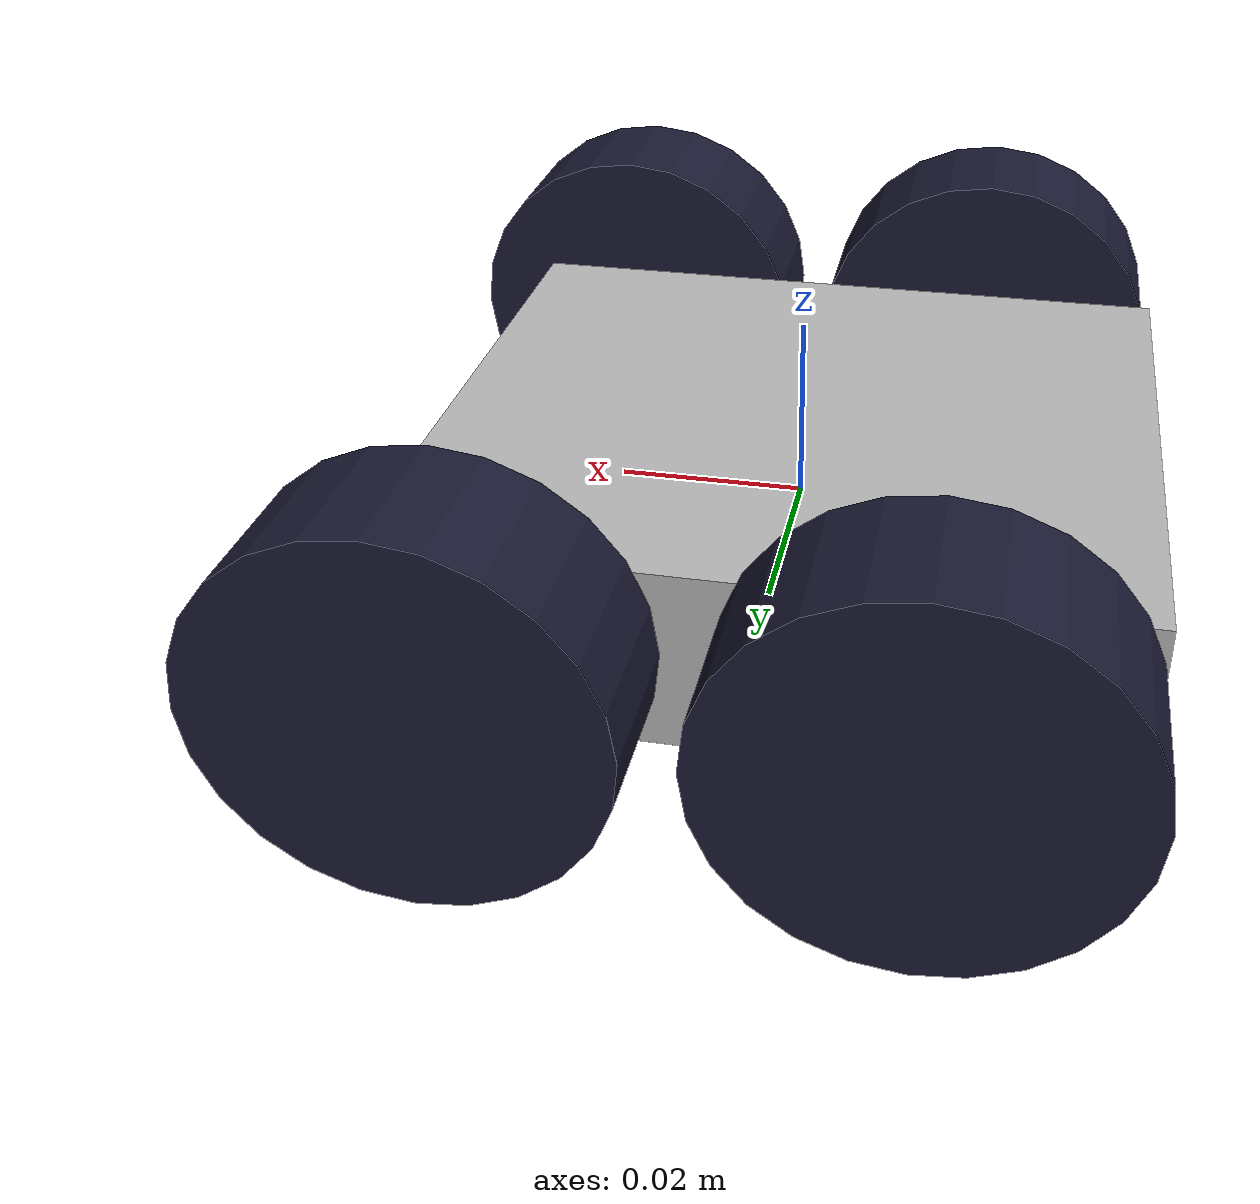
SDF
<?xml version="1.0" ?>
<sdf version="1.5">

  <model name="pushbot">
    <pose>0 0 0 0 0 0</pose>

    <link name="chassis">
      <pose>0 0 0 0 0 0</pose>
      <inertial>
        <mass>130</mass>
        <!-- for a box: ixx = 0.083 * mass * (y*y + z*z)
                        iyy = 0.083 * mass * (x*x + z*z)
                        izz = 0.083 * mass * (x*x + y*y) -->
        <inertia>
          <ixx>1</ixx>
          <ixy>0</ixy>
          <ixz>0</ixz>
          <iyy>1</iyy>
          <iyz>0</iyz>
          <izz>1</izz>
        </inertia>
      </inertial>
      <collision name="collision">
        <geometry>
          <box>
            <size>0.075 0.065 0.02</size>
          </box>
        </geometry>
      </collision>
      <visual name="chassis">
        <geometry>
          <box>
            <size>0.075 0.065 0.02</size>
          </box>
        </geometry>
      </visual>
    </link>

    <link name="back_left_wheel">
      <pose> -0.0175 0.0425 0.003 0 0 0</pose>
      <inertial>
        <mass>25</mass>-->
        <!-- for a solid cylinder, along y-axis: ixx = izz = 0.083 * mass * (3*r*r + l*l)
                                                 iyy = 0.5 * mass * r*r -->
        <inertia>
          <ixx>1</ixx>
          <ixy>0</ixy>
          <ixz>0</ixz>
          <iyy>1</iyy>
          <iyz>0</iyz>
          <izz>1</izz>
        </inertia>
      </inertial>
      <collision name="collision">
        <pose>0 0 0 -1.5707 0 0</pose>
        <geometry>
          <cylinder>
            <radius>0.02</radius>
            <length>0.015</length>
          </cylinder>
        </geometry>
        <surface>
          <friction>
            <ode>
              <mu>1.0</mu>
              <mu2>1.0</mu2>
              <slip1>0.0</slip1>
              <slip2>0.0</slip2>
            </ode>
          </friction>
        </surface>
      </collision>
      <visual name="back_left_wheel">
        <pose>0 0 0 -1.5707 0 0</pose>
        <geometry>
          <cylinder>
            <radius>0.02</radius>
            <length>0.015</length>
          </cylinder>
        </geometry>
        <material>
          <ambient>0.1 0.1 0.1 1</ambient>
          <diffuse>0.1 0.1 0.2 1</diffuse>
          <specular>0 0 0 0</specular>
          <emissive>0 0 0 1</emissive>
        </material>
      </visual>
    </link>

    <joint name="back_left_joint" type="revolute">
      <parent>chassis</parent>
      <child>back_left_wheel</child>
      <axis>
      <xyz>0 1 0</xyz>
      </axis>
    </joint>

    <link name="back_right_wheel">
      <pose> -0.0175 -0.0425 0.003 0 0 0</pose>
      <inertial>
        <mass>25</mass>
        <!-- for a solid cylinder, along y-axis: ixx = izz = 0.083 * mass * (3*r*r + l*l)
                                                 iyy = 0.5 * mass * r*r -->
        <inertia>
          <ixx>1</ixx>
          <ixy>0</ixy>
          <ixz>0</ixz>
          <iyy>1</iyy>
          <iyz>0</iyz>
          <izz>1</izz>
        </inertia>
      </inertial>
      <collision name="collision">
        <pose>0 0 0 -1.5707 0 0</pose>
        <geometry>
          <cylinder>
            <radius>0.02</radius>
            <length>0.015</length>
          </cylinder>
        </geometry>
        <surface>
          <friction>
            <ode>
              <mu>1.0</mu>
              <mu2>1.0</mu2>
              <slip1>0.0</slip1>
              <slip2>0.0</slip2>
            </ode>
          </friction>
        </surface>
      </collision>
      <visual name="back_right_wheel">
        <pose>0 0 0 -1.5707 0 0</pose>
        <geometry>
          <cylinder>
            <radius>0.02</radius>
            <length>0.015</length>
          </cylinder>
        </geometry>
        <material>
          <ambient>0.1 0.1 0.1 1</ambient>
          <diffuse>0.1 0.1 0.2 1</diffuse>
          <specular>0 0 0 0</specular>
          <emissive>0 0 0 1</emissive>
        </material>
      </visual>
    </link>

    <joint name="back_right_joint" type="revolute">
      <parent>chassis</parent>
      <child>back_right_wheel</child>
      <axis>
      <xyz>0 1 0</xyz>
      </axis>
    </joint>

    <link name="front_left_wheel">
      <pose> 0.0275 0.0425 0.003 0 0 0</pose>
      <inertial>
        <mass>25</mass>
        <!-- for a solid cylinder, along y-axis: ixx = izz = 0.083 * mass * (3*r*r + l*l)
                                                 iyy = 0.5 * mass * r*r -->
        <inertia>
          <ixx>1</ixx>
          <ixy>0</ixy>
          <ixz>0</ixz>
          <iyy>1</iyy>
          <iyz>0</iyz>
          <izz>1</izz>
        </inertia>
      </inertial>
      <collision name="collision">
        <pose>0 0 0 -1.5707 0 0</pose>
        <geometry>
          <cylinder>
            <radius>0.02</radius>
            <length>0.015</length>
          </cylinder>
        </geometry>
        <surface>
          <friction>
            <ode>
              <mu>1.0</mu>
              <mu2>1.0</mu2>
              <slip1>0.0</slip1>
              <slip2>0.0</slip2>
            </ode>
          </friction>
        </surface>
      </collision>
      <visual name="front_left_wheel">
        <pose>0 0 0 -1.5707 0 0</pose>
        <geometry>
          <cylinder>
            <radius>0.02</radius>
            <length>0.015</length>
          </cylinder>
        </geometry>
        <material>
          <ambient>0.1 0.1 0.1 1</ambient>
          <diffuse>0.1 0.1 0.2 1</diffuse>
          <specular>0 0 0 0</specular>
          <emissive>0 0 0 1</emissive>
        </material>
      </visual>
    </link>

    <joint name="front_left_joint" type="revolute">
      <parent>chassis</parent>
      <child>front_left_wheel</child>
      <axis>
      <xyz>0 1 0</xyz>
      </axis>
    </joint>

    <link name="front_right_wheel">
      <pose> 0.0275 -0.0425 0.003 0 0 0</pose>
      <inertial>
        <mass>25</mass>
        <!-- for a solid cylinder, along y-axis: ixx = izz = 0.083 * mass * (3*r*r + l*l)
                                                 iyy = 0.5 * mass * r*r -->
        <inertia>
          <ixx>1</ixx>
          <ixy>0</ixy>
          <ixz>0</ixz>
          <iyy>1</iyy>
          <iyz>0</iyz>
          <izz>1</izz>
        </inertia>
      </inertial>
      <collision name="collision">
        <pose>0 0 0 -1.5707 0 0</pose>
        <geometry>
          <cylinder>
            <radius>0.02</radius>
            <length>0.015</length>
          </cylinder>
        </geometry>
        <surface>
          <friction>
            <ode>
              <mu>1.0</mu>
              <mu2>1.0</mu2>
              <slip1>0.0</slip1>
              <slip2>0.0</slip2>
            </ode>
          </friction>
        </surface>
      </collision>
      <visual name="front_right_wheel">
        <pose>0 0 0 -1.5707 0 0</pose>
        <geometry>
          <cylinder>
            <radius>0.02</radius>
            <length>0.015</length>
          </cylinder>
        </geometry>
        <material>
          <ambient>0.1 0.1 0.1 1</ambient>
          <diffuse>0.1 0.1 0.2 1</diffuse>
          <specular>0 0 0 0</specular>
          <emissive>0 0 0 1</emissive>
        </material>
      </visual>
    </link>

    <joint name="front_right_joint" type="revolute">
      <parent>chassis</parent>
      <child>front_right_wheel</child>
      <axis>
      <xyz>0 1 0</xyz>
      </axis>
    </joint>

  </model>
</sdf>
